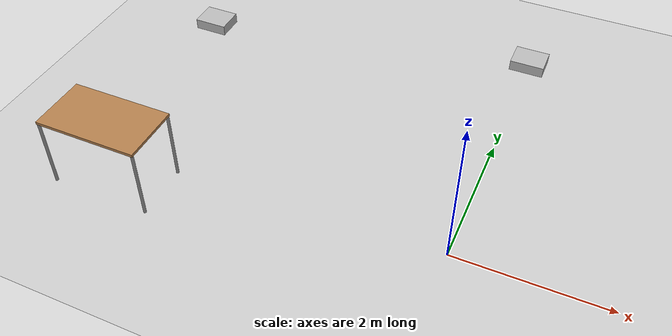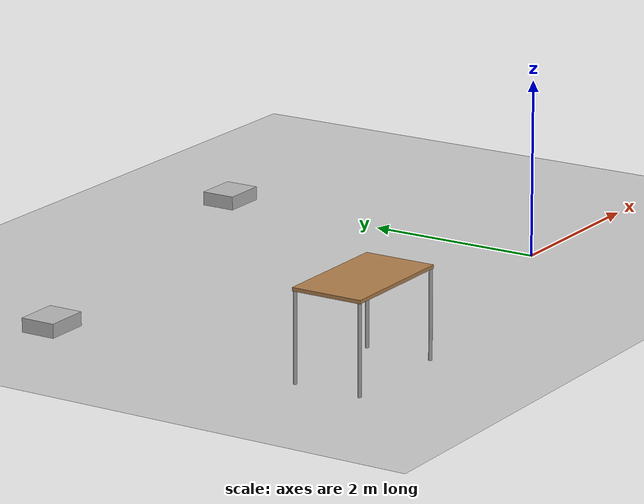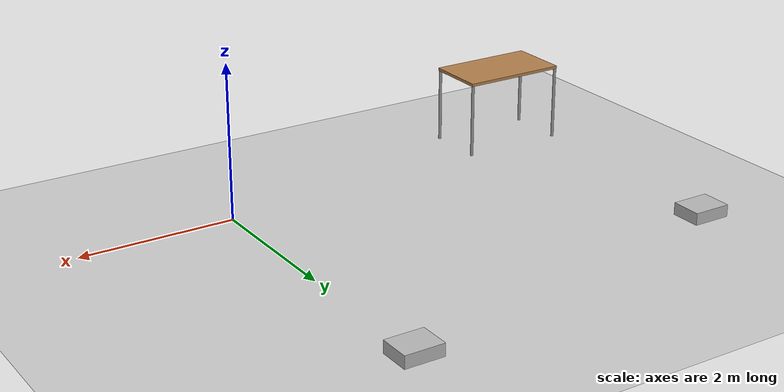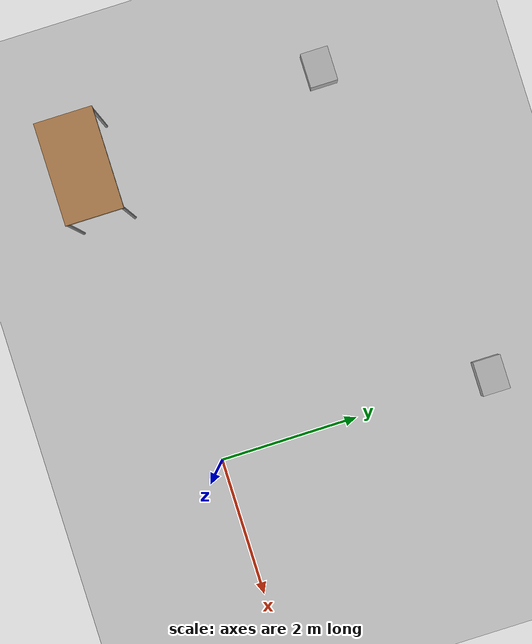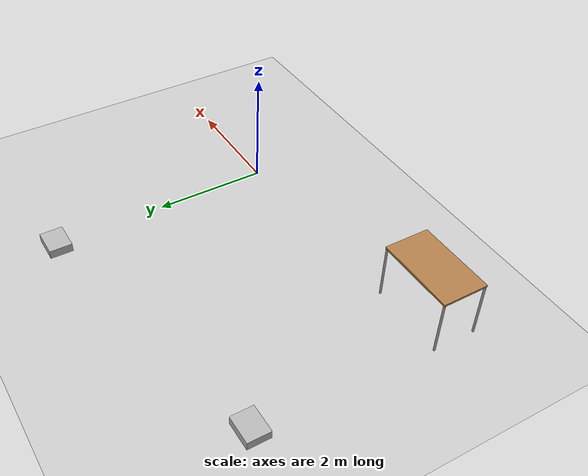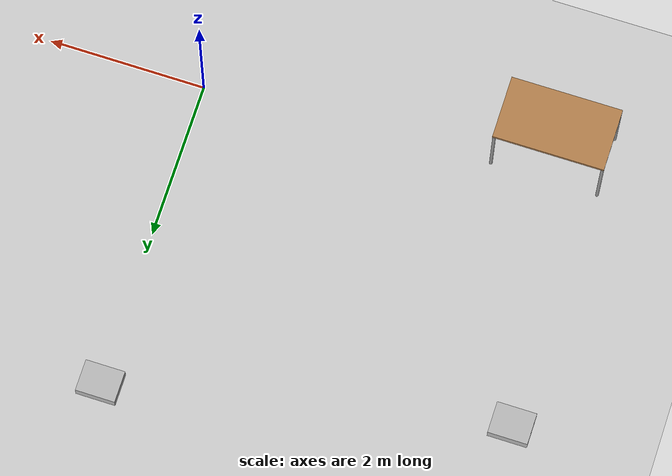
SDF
<sdf version="1.6">
 <world name="default">
  <model name="ground_plane">
   <static>1</static>
   <link name="link">
    <collision name="collision">
     <geometry><plane><normal>0 0 1</normal><size>100 100</size></plane></geometry>
     <surface><friction><ode><mu>100</mu><mu2>50</mu2></ode></friction></surface>
    </collision>
    <visual name="visual">
     <cast_shadows>0</cast_shadows>
     <geometry><plane><normal>0 0 1</normal><size>100 100</size></plane></geometry>
     <material>
      <script><uri>file://media/materials/scripts/gazebo.material</uri><name>Gazebo/Grey</name></script>
     </material>
    </visual>
   </link>
  </model>
  <model name="table">
   <static>0</static>
   <link name="link">
    <collision name="surface">
     <pose>0 0 1 0 -0 0</pose>
     <geometry><box><size>1.5 0.8 0.03</size></box></geometry>
     <surface><friction><ode><mu>0.6</mu><mu2>0.6</mu2></ode></friction></surface>
    </collision>
    <visual name="visual1">
     <pose>0 0 1 0 -0 0</pose>
     <geometry><box><size>1.4 0.8 0.04</size></box></geometry>
     <material>
      <script><uri>file://media/materials/scripts/gazebo.material</uri><name>Gazebo/Wood</name></script>
     </material>
    </visual>
    <collision name="front_left_leg">
     <pose>0.68 0.38 0.5 0 -0 0</pose>
     <geometry><cylinder><radius>0.02</radius><length>1</length></cylinder></geometry>
    </collision>
    <visual name="front_left_leg">
     <pose>0.68 0.38 0.5 0 -0 0</pose>
     <geometry><cylinder><radius>0.02</radius><length>1</length></cylinder></geometry>
     <material>
      <script><uri>file://media/materials/scripts/gazebo.material</uri><name>Gazebo/Grey</name></script>
     </material>
    </visual>
    <collision name="front_right_leg">
     <pose>0.68 -0.38 0.5 0 -0 0</pose>
     <geometry><cylinder><radius>0.02</radius><length>1</length></cylinder></geometry>
    </collision>
    <visual name="front_right_leg">
     <pose>0.68 -0.38 0.5 0 -0 0</pose>
     <geometry><cylinder><radius>0.02</radius><length>1</length></cylinder></geometry>
     <material>
      <script><uri>file://media/materials/scripts/gazebo.material</uri><name>Gazebo/Grey</name></script>
     </material>
    </visual>
    <collision name="back_right_leg">
     <pose>-0.68 -0.38 0.5 0 -0 0</pose>
     <geometry><cylinder><radius>0.02</radius><length>1</length></cylinder></geometry>
    </collision>
    <visual name="back_right_leg">
     <pose>-0.68 -0.38 0.5 0 -0 0</pose>
     <geometry><cylinder><radius>0.02</radius><length>1</length></cylinder></geometry>
     <material>
      <script><uri>file://media/materials/scripts/gazebo.material</uri><name>Gazebo/Grey</name></script>
     </material>
    </visual>
    <collision name="back_left_leg">
     <pose>-0.68 0.38 0.5 0 -0 0</pose>
     <geometry><cylinder><radius>0.02</radius><length>1</length></cylinder></geometry>
    </collision>
    <visual name="back_left_leg">
     <pose>-0.68 0.38 0.5 0 -0 0</pose>
     <geometry><cylinder><radius>0.02</radius><length>1</length></cylinder></geometry>
     <material>
      <script><uri>file://media/materials/scripts/gazebo.material</uri><name>Gazebo/Grey</name></script>
     </material>
    </visual>
    <inertial>
     <inertia><ixx>1</ixx><ixy>0</ixy><ixz>0</ixz><iyy>1</iyy><iyz>0</iyz><izz>1</izz></inertia>
     <mass>1</mass>
    </inertial>
   </link>
   <pose>-4.34248 -0.532954 -9e-06 1e-06 -1e-06 0</pose>
  </model>
  <model name="cardboard_box_2">
   <pose>-4.88373 2.96722 0.149 0 -0 0</pose>
   <link name="link">
    <inertial>
     <mass>2</mass>
     <inertia>
      <ixx>0.0416667</ixx>
      <ixy>0</ixy>
      <ixz>0</ixz>
      <iyy>0.0566667</iyy>
      <iyz>0</iyz>
      <izz>0.0683333</izz>
     </inertia>
    </inertial>
    <collision name="collision">
     <geometry><box><size>0.5 0.4 0.3</size></box></geometry>
     <surface>
      <friction><ode><mu>1</mu><mu2>1</mu2></ode></friction>
      <contact><ode><kp>1e+07</kp><kd>1</kd><min_depth>0.001</min_depth><max_vel>0.1</max_vel></ode></contact>
     </surface>
    </collision>
    <visual name="visual">
     <pose>0 0 -0.15 0 -0 0</pose>
     <geometry><box><size>0.5 0.4 0.3</size></box></geometry>
    </visual>
   </link>
  </model>
  <model name="cardboard_box_3">
   <pose>-0.0158 3.98725 0.14951 2e-06 -2e-06 -0</pose>
   <link name="link">
    <inertial>
     <mass>2</mass>
     <inertia>
      <ixx>0.0416667</ixx>
      <ixy>0</ixy>
      <ixz>0</ixz>
      <iyy>0.0566667</iyy>
      <iyz>0</iyz>
      <izz>0.0683333</izz>
     </inertia>
    </inertial>
    <collision name="collision">
     <geometry><box><size>0.5 0.4 0.3</size></box></geometry>
     <surface>
      <friction><ode><mu>1</mu><mu2>1</mu2></ode></friction>
      <contact><ode><kp>1e+07</kp><kd>1</kd><min_depth>0.001</min_depth><max_vel>0.1</max_vel></ode></contact>
     </surface>
    </collision>
    <visual name="visual">
     <pose>0 0 -0.15 0 -0 0</pose>
     <geometry><box><size>0.5 0.4 0.3</size></box></geometry>
    </visual>
   </link>
  </model>
 </world>
</sdf>
